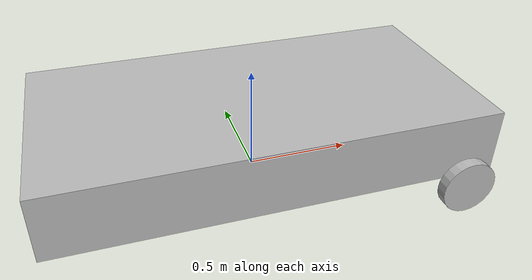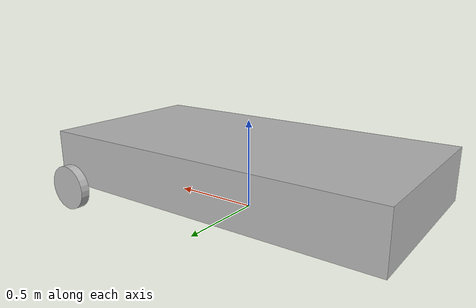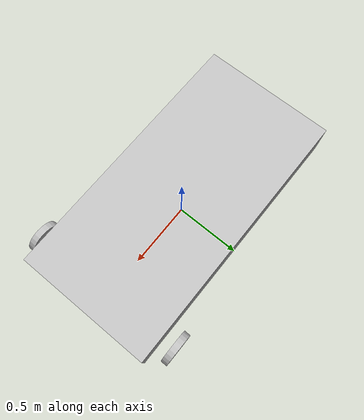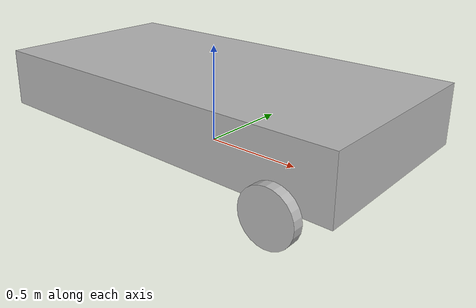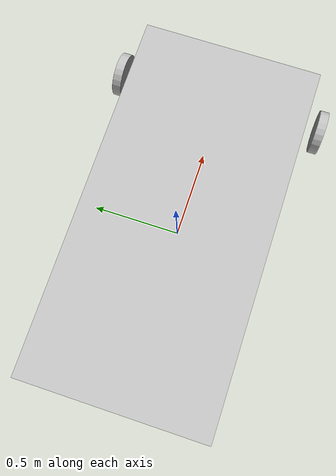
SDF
<?xml version='1.0'?>
<sdf version='1.7'>
  <model name="rover_base">
    <link name='chassis'>
        <pose>0 0 .25 0 0 0</pose>

        <inertial>
          <mass>20.0</mass>
          <pose>-0.1 0 -0.1 0 0 0</pose>
          <inertia>
            <ixx>0.5</ixx>
            <iyy>1.0</iyy>
            <izz>0.1</izz>
          </inertia>
        </inertial>

        <collision name='collision'>
          <geometry>
            <box>
              <size>2 1 0.3</size>
            </box>
          </geometry>
        </collision>

        <visual name='visual'>
          <geometry>
            <box>
              <size>2 1 0.3</size>
            </box>
          </geometry>
        </visual>

        <collision name='caster_collision'>
          <pose>-0.8 0 -0.125 0 0 0</pose>
          <geometry>
            <sphere>
              <radius>.125</radius>
            </sphere>
          </geometry>

          <surface>
            <friction>
              <ode>
                <mu>0</mu>
                <mu2>0</mu2>
              </ode>
            </friction>
          </surface>
        </collision>

        <visual name='caster_visual'>
          <pose>-0.8 0 -0.125 0 0 0</pose>
          <geometry>
            <sphere>
              <radius>.125</radius>
            </sphere>
          </geometry>
        </visual>
      </link>
      <link name="left_wheel">
        <pose>0.8 0.6 0.125 0 1.5707 1.5707</pose>
        <collision name="collision">
          <geometry>
            <cylinder>
              <radius>.125</radius>
              <length>.05</length>
            </cylinder>
          </geometry>
        </collision>
        <visual name="visual">
          <geometry>
            <cylinder>
              <radius>.125</radius>
              <length>.05</length>
            </cylinder>
          </geometry>
        </visual>
      </link>

      <link name="right_wheel">
        <pose>0.8 -0.6 0.125 0 1.5707 1.5707</pose>
        <collision name="collision">
          <geometry>
            <cylinder>
              <radius>.125</radius>
              <length>.05</length>
            </cylinder>
          </geometry>
        </collision>
        <visual name="visual">
          <geometry>
            <cylinder>
              <radius>.125</radius>
              <length>.05</length>
            </cylinder>
          </geometry>
        </visual>
      </link>

      <joint type="revolute" name="left_wheel_joint">
        <pose>0 0 -0.03 0 0 0</pose>
        <child>left_wheel</child>
        <parent>chassis</parent>
        <axis>
          <use_parent_model_frame>true</use_parent_model_frame>
          <xyz>0 1 0</xyz>
        </axis>
      </joint>

      <joint type="revolute" name="right_wheel_joint">
        <pose>0 0 0.03 0 0 0</pose>
        <child>right_wheel</child>
        <parent>chassis</parent>
        <axis>
          <use_parent_model_frame>true</use_parent_model_frame>
          <xyz>0 1 0</xyz>
        </axis>
      </joint>

      <plugin name="differential_drive_controller" filename="libgazebo_ros_diff_drive.so">
        <updateRate>100</updateRate>
        <alwaysOn>true</alwaysOn>

        <!-- Name of left joint, defaults to `left_joint` -->
        <leftJoint>left_wheel_joint</leftJoint>

        <!-- Name of right joint, defaults to `right_joint` -->
        <rightJoint>right_wheel_joint</rightJoint>

        <!-- The distance from the center of one wheel to the other, in meters, defaults to 0.34 m -->
        <wheelSeparation>0.4</wheelSeparation>

        <!-- Diameter of the wheels, in meters, defaults to 0.15 m -->
        <wheelDiameter>0.2</wheelDiameter>

        <!-- Wheel acceleration, in rad/s^2, defaults to 0.0 rad/s^2 -->
        <wheelAcceleration>1.0</wheelAcceleration>

        <!-- Maximum torque which the wheels can produce, in Nm, defaults to 5 Nm -->
        <wheelTorque>10</wheelTorque>

        <!-- Topic to receive geometry_msgs/Twist message commands, defaults to `cmd_vel` -->
        <commandTopic>cmd_vel</commandTopic>

        <!-- Topic to publish nav_msgs/Odometry messages, defaults to `odom` -->
        <odometryTopic>odom</odometryTopic>

        <!-- Odometry frame, defaults to `odom` -->
        <odometryFrame>odom</odometryFrame>

        <!-- Robot frame to calculate odometry from, defaults to `base_footprint` -->
        <robotBaseFrame>base_link</robotBaseFrame>

        <!-- Odometry source, 0 for ENCODER, 1 for WORLD, defaults to WORLD -->
        <odometrySource>1</odometrySource>

        <!-- Set to true to publish transforms for the wheel links, defaults to false -->
        <publishWheelTF>true</publishWheelTF>

        <!-- Set to true to publish transforms for the odometry, defaults to true -->
        <publishOdom>true</publishOdom>

        <!-- Set to true to publish sensor_msgs/JointState on /joint_states for the wheel joints, defaults to false -->
        <publishWheelJointState>true</publishWheelJointState>

        <!-- Set to true to swap right and left wheels, defaults to true -->
        <legacyMode>false</legacyMode>
    </plugin>

  </model>
</sdf>
